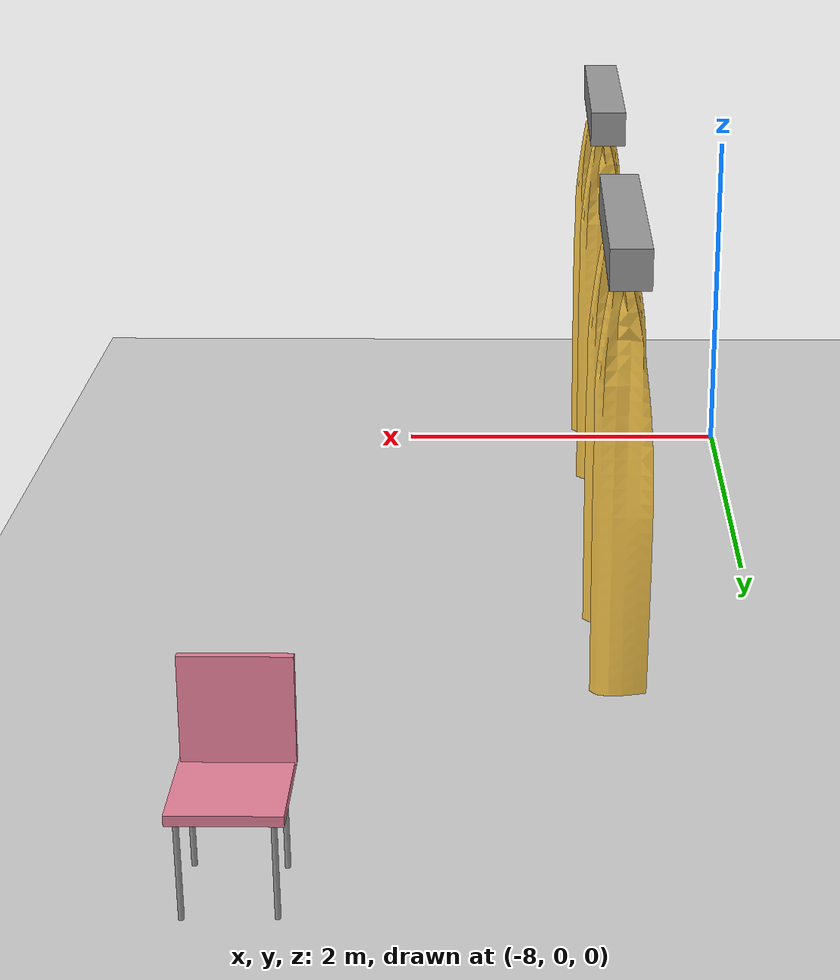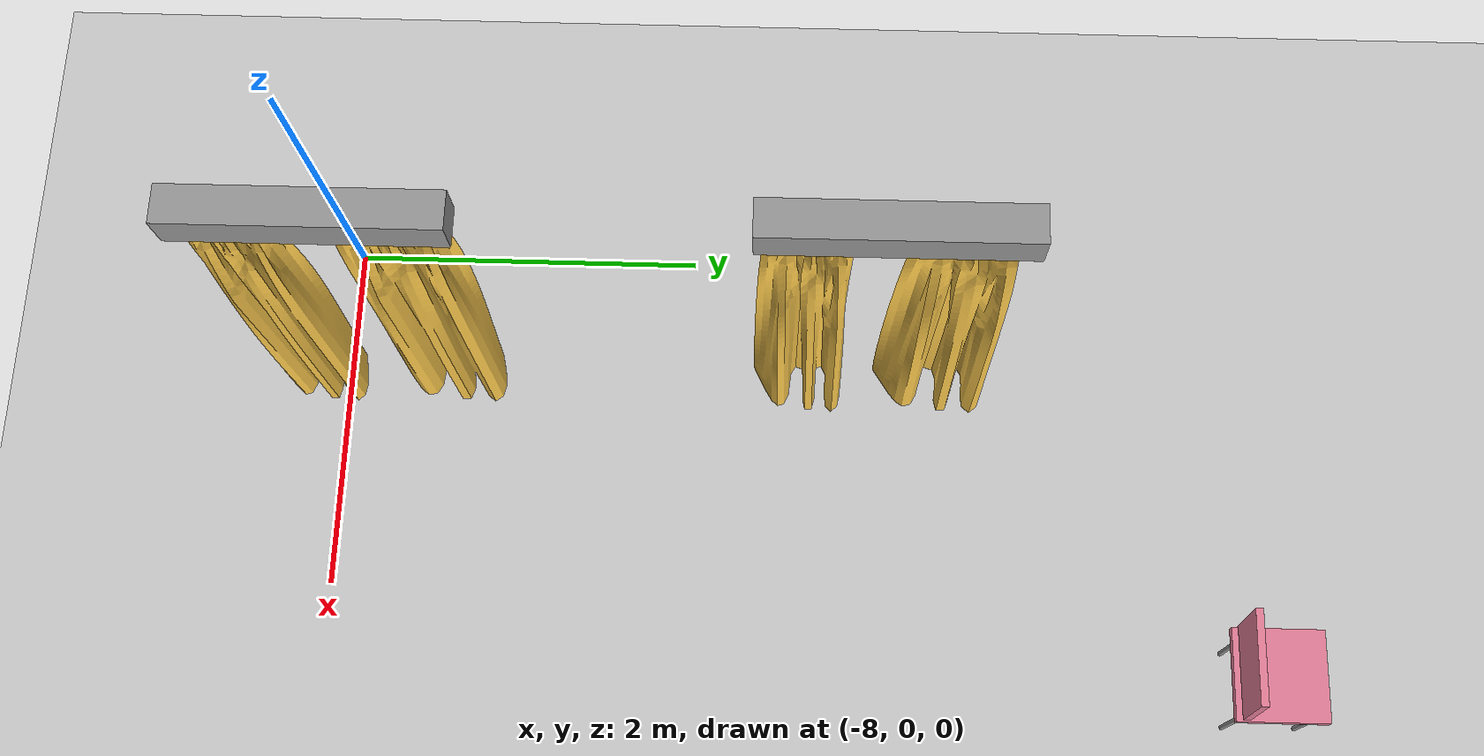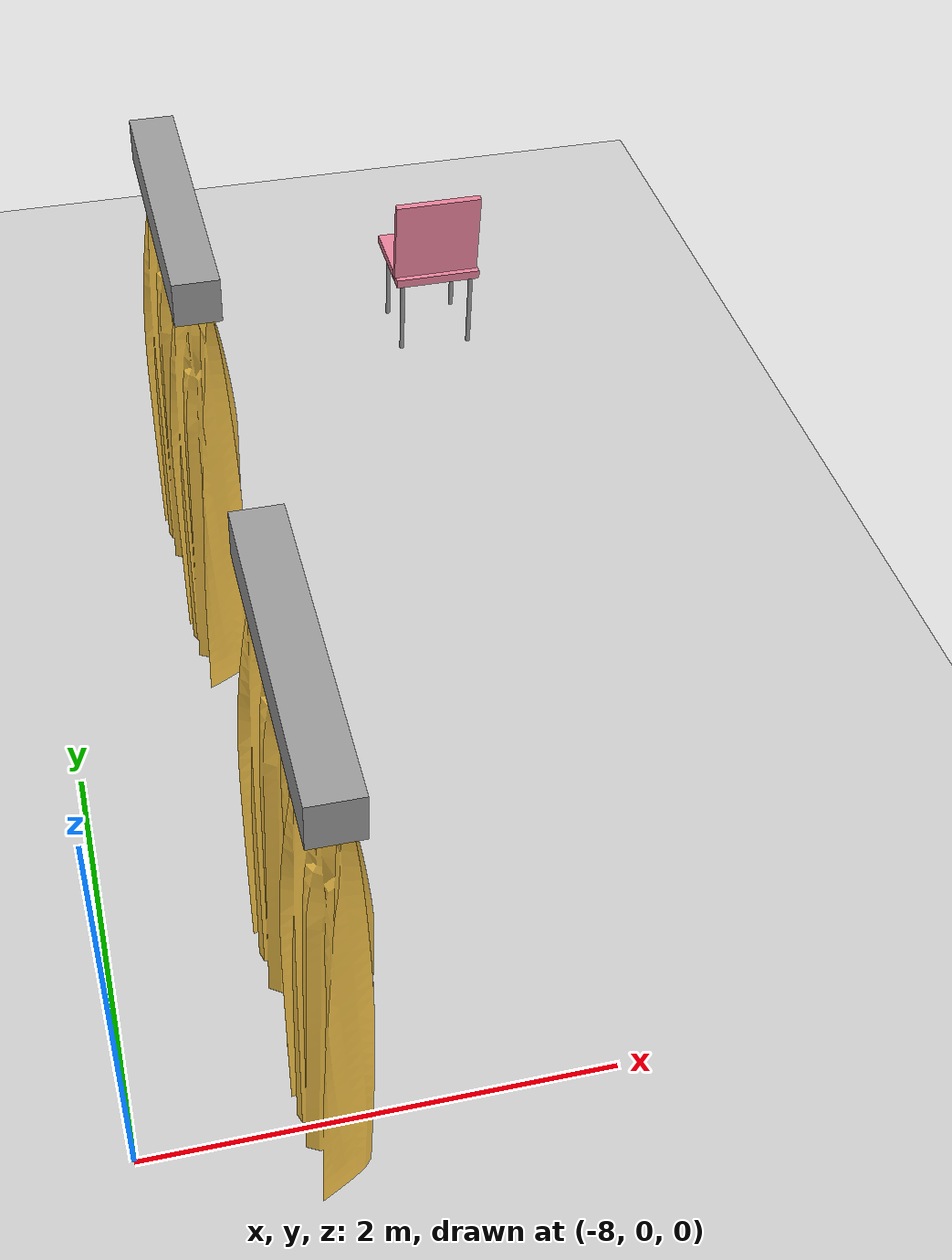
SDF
<sdf version="1.7">
 <world name="default">
  <model name="ground_plane">
   <static>1</static>
   <link name="link">
    <collision name="collision">
     <geometry><plane><normal>0 0 1</normal><size>100 100</size></plane></geometry>
     <surface>
      <contact><collide_bitmask>65535</collide_bitmask></contact>
      <friction><ode><mu>100</mu><mu2>50</mu2></ode></friction>
     </surface>
    </collision>
    <visual name="visual">
     <cast_shadows>0</cast_shadows>
     <geometry><plane><normal>0 0 1</normal><size>100 100</size></plane></geometry>
     <material>
      <script><uri>file://media/materials/scripts/gazebo.material</uri><name>Gazebo/Grey</name></script>
     </material>
    </visual>
   </link>
  </model>
  <model name="my_curtains">
   <link name="link_0">
    <inertial>
     <mass>1</mass>
     <inertia>
      <ixx>0.166667</ixx>
      <ixy>0</ixy>
      <ixz>0</ixz>
      <iyy>0.166667</iyy>
      <iyz>0</iyz>
      <izz>0.166667</izz>
     </inertia>
    </inertial>
    <pose>-0.211757 0.222097 -0.060343 0 -0 1.5714</pose>
    <visual name="visual">
     <pose>0 0 1.28 0 -0 0</pose>
     <geometry>
      <mesh>
       <uri>/home/massari/workspace/catkin_ws/src/my_robot/models/my_curtains/../../meshes/my_curtain.dae</uri>
       <scale>0.6 1 1.15</scale>
      </mesh>
     </geometry>
     <material>
      <lighting>1</lighting>
      <script><uri>file://media/materials/scripts/gazebo.material</uri><name>Gazebo/Grey</name></script>
      <shader type="pixel"><normal_map>__default__</normal_map></shader>
      <ambient>1 0.8 0.3 1</ambient>
      <diffuse>1 0.8 0.3 1</diffuse>
      <specular>0.01 0.01 0.01 1</specular>
      <emissive>0 0 0 1</emissive>
     </material>
    </visual>
    <collision name="collision">
     <pose>0 0 1.28 0 -0 0</pose>
     <geometry>
      <mesh>
       <uri>/home/massari/workspace/catkin_ws/src/my_robot/models/my_curtains/../../meshes/my_curtain.dae</uri>
       <scale>0.6 1 1.15</scale>
      </mesh>
     </geometry>
     <surface>
      <friction>
       <ode><mu>1</mu><mu2>1</mu2><fdir1>0 0 0</fdir1><slip1>0</slip1><slip2>0</slip2></ode>
       <torsional>
        <coefficient>1</coefficient>
        <patch_radius>0</patch_radius>
        <surface_radius>0</surface_radius>
        <use_patch_radius>1</use_patch_radius>
        <ode><slip>0</slip></ode>
       </torsional>
      </friction>
      <bounce><restitution_coefficient>0</restitution_coefficient><threshold>1e+06</threshold></bounce>
      <contact>
       <collide_without_contact>0</collide_without_contact>
       <collide_without_contact_bitmask>1</collide_without_contact_bitmask>
       <collide_bitmask>1</collide_bitmask>
       <ode>
        <soft_cfm>0</soft_cfm>
        <soft_erp>0.2</soft_erp>
        <kp>1e+13</kp>
        <kd>1</kd>
        <max_vel>0.01</max_vel>
        <min_depth>0</min_depth>
       </ode>
       <bullet>
        <split_impulse>1</split_impulse>
        <split_impulse_penetration_threshold>-0.01</split_impulse_penetration_threshold>
        <soft_cfm>0</soft_cfm>
        <soft_erp>0.2</soft_erp>
        <kp>1e+13</kp>
        <kd>1</kd>
       </bullet>
      </contact>
     </surface>
    </collision>
   </link>
   <link name="link_1">
    <inertial>
     <mass>1</mass>
     <inertia>
      <ixx>0.166667</ixx>
      <ixy>0</ixy>
      <ixz>0</ixz>
      <iyy>0.166667</iyy>
      <iyz>0</iyz>
      <izz>0.166667</izz>
     </inertia>
    </inertial>
    <pose>-0.223901 1.09183 -0.054274 0 -0 0</pose>
    <visual name="visual">
     <pose>0 0 1.28 0 -0 1.5707</pose>
     <geometry>
      <mesh>
       <uri>/home/massari/workspace/catkin_ws/src/my_robot/models/my_curtains/../../meshes/my_curtain.dae</uri>
       <scale>0.75 1 1.15</scale>
      </mesh>
     </geometry>
     <material>
      <lighting>1</lighting>
      <script><uri>file://media/materials/scripts/gazebo.material</uri><name>Gazebo/Grey</name></script>
      <shader type="pixel"><normal_map>__default__</normal_map></shader>
      <ambient>1 0.8 0.3 1</ambient>
      <diffuse>1 0.8 0.3 1</diffuse>
      <specular>0.01 0.01 0.01 1</specular>
      <emissive>0 0 0 1</emissive>
     </material>
    </visual>
    <collision name="collision">
     <pose>0 0 1.28 0 -0 1.5707</pose>
     <geometry>
      <mesh>
       <uri>/home/massari/workspace/catkin_ws/src/my_robot/models/my_curtains/../../meshes/my_curtain.dae</uri>
       <scale>0.75 1 1.15</scale>
      </mesh>
     </geometry>
     <surface>
      <friction>
       <ode><mu>1</mu><mu2>1</mu2><fdir1>0 0 0</fdir1><slip1>0</slip1><slip2>0</slip2></ode>
       <torsional>
        <coefficient>1</coefficient>
        <patch_radius>0</patch_radius>
        <surface_radius>0</surface_radius>
        <use_patch_radius>1</use_patch_radius>
        <ode><slip>0</slip></ode>
       </torsional>
      </friction>
      <bounce><restitution_coefficient>0</restitution_coefficient><threshold>1e+06</threshold></bounce>
      <contact>
       <collide_without_contact>0</collide_without_contact>
       <collide_without_contact_bitmask>1</collide_without_contact_bitmask>
       <collide_bitmask>1</collide_bitmask>
       <ode>
        <soft_cfm>0</soft_cfm>
        <soft_erp>0.2</soft_erp>
        <kp>1e+13</kp>
        <kd>1</kd>
        <max_vel>0.01</max_vel>
        <min_depth>0</min_depth>
       </ode>
       <bullet>
        <split_impulse>1</split_impulse>
        <split_impulse_penetration_threshold>-0.01</split_impulse_penetration_threshold>
        <soft_cfm>0</soft_cfm>
        <soft_erp>0.2</soft_erp>
        <kp>1e+13</kp>
        <kd>1</kd>
       </bullet>
      </contact>
     </surface>
    </collision>
   </link>
   <link name="link_2">
    <inertial>
     <mass>1</mass>
     <inertia>
      <ixx>0.166667</ixx>
      <ixy>0</ixy>
      <ixz>0</ixz>
      <iyy>0.166667</iyy>
      <iyz>0</iyz>
      <izz>0.166667</izz>
     </inertia>
    </inertial>
    <pose>-0.239313 0.203562 1.05159 0 -0 0</pose>
    <visual name="visual">
     <pose>0 0 1.28 0 -0 0</pose>
     <geometry><box><size>0.2 1.35 0.2</size></box></geometry>
     <material>
      <lighting>1</lighting>
      <script><uri>file://media/materials/scripts/gazebo.material</uri><name>Gazebo/Grey</name></script>
      <shader type="pixel"><normal_map>__default__</normal_map></shader>
      <ambient>0.9 0.9 0.9 1</ambient>
      <diffuse>0.9 0.9 0.9 1</diffuse>
      <specular>0.01 0.01 0.01 1</specular>
      <emissive>0 0 0 1</emissive>
     </material>
    </visual>
    <collision name="collision">
     <pose>0 0 1.28 0 -0 0</pose>
     <geometry><box><size>0.2 1.35 0.2</size></box></geometry>
     <surface>
      <friction>
       <ode><mu>1</mu><mu2>1</mu2><fdir1>0 0 0</fdir1><slip1>0</slip1><slip2>0</slip2></ode>
       <torsional>
        <coefficient>1</coefficient>
        <patch_radius>0</patch_radius>
        <surface_radius>0</surface_radius>
        <use_patch_radius>1</use_patch_radius>
        <ode><slip>0</slip></ode>
       </torsional>
      </friction>
      <bounce><restitution_coefficient>0</restitution_coefficient><threshold>1e+06</threshold></bounce>
      <contact>
       <collide_without_contact>0</collide_without_contact>
       <collide_without_contact_bitmask>1</collide_without_contact_bitmask>
       <collide_bitmask>1</collide_bitmask>
       <ode>
        <soft_cfm>0</soft_cfm>
        <soft_erp>0.2</soft_erp>
        <kp>1e+13</kp>
        <kd>1</kd>
        <max_vel>0.01</max_vel>
        <min_depth>0</min_depth>
       </ode>
       <bullet>
        <split_impulse>1</split_impulse>
        <split_impulse_penetration_threshold>-0.01</split_impulse_penetration_threshold>
        <soft_cfm>0</soft_cfm>
        <soft_erp>0.2</soft_erp>
        <kp>1e+13</kp>
        <kd>1</kd>
       </bullet>
      </contact>
     </surface>
    </collision>
   </link>
   <static>1</static>
   <pose>-6.99404 0.125287 0 0 -0 0</pose>
  </model>
  <model name="my_curtains_0">
   <link name="link_0">
    <inertial>
     <mass>1</mass>
     <inertia>
      <ixx>0.166667</ixx>
      <ixy>0</ixy>
      <ixz>0</ixz>
      <iyy>0.166667</iyy>
      <iyz>0</iyz>
      <izz>0.166667</izz>
     </inertia>
    </inertial>
    <pose>-0.211757 0.222097 -0.060343 0 -0 1.5714</pose>
    <visual name="visual">
     <pose>0 0 1.28 0 -0 0</pose>
     <geometry>
      <mesh>
       <uri>/home/massari/workspace/catkin_ws/src/my_robot/models/my_curtains/../../meshes/my_curtain.dae</uri>
       <scale>0.6 1 1.15</scale>
      </mesh>
     </geometry>
     <material>
      <lighting>1</lighting>
      <script><uri>file://media/materials/scripts/gazebo.material</uri><name>Gazebo/Grey</name></script>
      <shader type="pixel"><normal_map>__default__</normal_map></shader>
      <ambient>1 0.8 0.3 1</ambient>
      <diffuse>1 0.8 0.3 1</diffuse>
      <specular>0.01 0.01 0.01 1</specular>
      <emissive>0 0 0 1</emissive>
     </material>
    </visual>
    <collision name="collision">
     <pose>0 0 1.28 0 -0 0</pose>
     <geometry>
      <mesh>
       <uri>/home/massari/workspace/catkin_ws/src/my_robot/models/my_curtains/../../meshes/my_curtain.dae</uri>
       <scale>0.6 1 1.15</scale>
      </mesh>
     </geometry>
     <surface>
      <friction>
       <ode><mu>1</mu><mu2>1</mu2><fdir1>0 0 0</fdir1><slip1>0</slip1><slip2>0</slip2></ode>
       <torsional>
        <coefficient>1</coefficient>
        <patch_radius>0</patch_radius>
        <surface_radius>0</surface_radius>
        <use_patch_radius>1</use_patch_radius>
        <ode><slip>0</slip></ode>
       </torsional>
      </friction>
      <bounce><restitution_coefficient>0</restitution_coefficient><threshold>1e+06</threshold></bounce>
      <contact>
       <collide_without_contact>0</collide_without_contact>
       <collide_without_contact_bitmask>1</collide_without_contact_bitmask>
       <collide_bitmask>1</collide_bitmask>
       <ode>
        <soft_cfm>0</soft_cfm>
        <soft_erp>0.2</soft_erp>
        <kp>1e+13</kp>
        <kd>1</kd>
        <max_vel>0.01</max_vel>
        <min_depth>0</min_depth>
       </ode>
       <bullet>
        <split_impulse>1</split_impulse>
        <split_impulse_penetration_threshold>-0.01</split_impulse_penetration_threshold>
        <soft_cfm>0</soft_cfm>
        <soft_erp>0.2</soft_erp>
        <kp>1e+13</kp>
        <kd>1</kd>
       </bullet>
      </contact>
     </surface>
    </collision>
   </link>
   <link name="link_1">
    <inertial>
     <mass>1</mass>
     <inertia>
      <ixx>0.166667</ixx>
      <ixy>0</ixy>
      <ixz>0</ixz>
      <iyy>0.166667</iyy>
      <iyz>0</iyz>
      <izz>0.166667</izz>
     </inertia>
    </inertial>
    <pose>-0.223901 1.09183 -0.054274 0 -0 0</pose>
    <visual name="visual">
     <pose>0 0 1.28 0 -0 1.5707</pose>
     <geometry>
      <mesh>
       <uri>/home/massari/workspace/catkin_ws/src/my_robot/models/my_curtains/../../meshes/my_curtain.dae</uri>
       <scale>0.75 1 1.15</scale>
      </mesh>
     </geometry>
     <material>
      <lighting>1</lighting>
      <script><uri>file://media/materials/scripts/gazebo.material</uri><name>Gazebo/Grey</name></script>
      <shader type="pixel"><normal_map>__default__</normal_map></shader>
      <ambient>1 0.8 0.3 1</ambient>
      <diffuse>1 0.8 0.3 1</diffuse>
      <specular>0.01 0.01 0.01 1</specular>
      <emissive>0 0 0 1</emissive>
     </material>
    </visual>
    <collision name="collision">
     <pose>0 0 1.28 0 -0 1.5707</pose>
     <geometry>
      <mesh>
       <uri>/home/massari/workspace/catkin_ws/src/my_robot/models/my_curtains/../../meshes/my_curtain.dae</uri>
       <scale>0.75 1 1.15</scale>
      </mesh>
     </geometry>
     <surface>
      <friction>
       <ode><mu>1</mu><mu2>1</mu2><fdir1>0 0 0</fdir1><slip1>0</slip1><slip2>0</slip2></ode>
       <torsional>
        <coefficient>1</coefficient>
        <patch_radius>0</patch_radius>
        <surface_radius>0</surface_radius>
        <use_patch_radius>1</use_patch_radius>
        <ode><slip>0</slip></ode>
       </torsional>
      </friction>
      <bounce><restitution_coefficient>0</restitution_coefficient><threshold>1e+06</threshold></bounce>
      <contact>
       <collide_without_contact>0</collide_without_contact>
       <collide_without_contact_bitmask>1</collide_without_contact_bitmask>
       <collide_bitmask>1</collide_bitmask>
       <ode>
        <soft_cfm>0</soft_cfm>
        <soft_erp>0.2</soft_erp>
        <kp>1e+13</kp>
        <kd>1</kd>
        <max_vel>0.01</max_vel>
        <min_depth>0</min_depth>
       </ode>
       <bullet>
        <split_impulse>1</split_impulse>
        <split_impulse_penetration_threshold>-0.01</split_impulse_penetration_threshold>
        <soft_cfm>0</soft_cfm>
        <soft_erp>0.2</soft_erp>
        <kp>1e+13</kp>
        <kd>1</kd>
       </bullet>
      </contact>
     </surface>
    </collision>
   </link>
   <link name="link_2">
    <inertial>
     <mass>1</mass>
     <inertia>
      <ixx>0.166667</ixx>
      <ixy>0</ixy>
      <ixz>0</ixz>
      <iyy>0.166667</iyy>
      <iyz>0</iyz>
      <izz>0.166667</izz>
     </inertia>
    </inertial>
    <pose>-0.239313 0.203562 1.05159 0 -0 0</pose>
    <visual name="visual">
     <pose>0 0 1.28 0 -0 0</pose>
     <geometry><box><size>0.2 1.35 0.2</size></box></geometry>
     <material>
      <lighting>1</lighting>
      <script><uri>file://media/materials/scripts/gazebo.material</uri><name>Gazebo/Grey</name></script>
      <shader type="pixel"><normal_map>__default__</normal_map></shader>
      <ambient>0.9 0.9 0.9 1</ambient>
      <diffuse>0.9 0.9 0.9 1</diffuse>
      <specular>0.01 0.01 0.01 1</specular>
      <emissive>0 0 0 1</emissive>
     </material>
    </visual>
    <collision name="collision">
     <pose>0 0 1.28 0 -0 0</pose>
     <geometry><box><size>0.2 1.35 0.2</size></box></geometry>
     <surface>
      <friction>
       <ode><mu>1</mu><mu2>1</mu2><fdir1>0 0 0</fdir1><slip1>0</slip1><slip2>0</slip2></ode>
       <torsional>
        <coefficient>1</coefficient>
        <patch_radius>0</patch_radius>
        <surface_radius>0</surface_radius>
        <use_patch_radius>1</use_patch_radius>
        <ode><slip>0</slip></ode>
       </torsional>
      </friction>
      <bounce><restitution_coefficient>0</restitution_coefficient><threshold>1e+06</threshold></bounce>
      <contact>
       <collide_without_contact>0</collide_without_contact>
       <collide_without_contact_bitmask>1</collide_without_contact_bitmask>
       <collide_bitmask>1</collide_bitmask>
       <ode>
        <soft_cfm>0</soft_cfm>
        <soft_erp>0.2</soft_erp>
        <kp>1e+13</kp>
        <kd>1</kd>
        <max_vel>0.01</max_vel>
        <min_depth>0</min_depth>
       </ode>
       <bullet>
        <split_impulse>1</split_impulse>
        <split_impulse_penetration_threshold>-0.01</split_impulse_penetration_threshold>
        <soft_cfm>0</soft_cfm>
        <soft_erp>0.2</soft_erp>
        <kp>1e+13</kp>
        <kd>1</kd>
       </bullet>
      </contact>
     </surface>
    </collision>
   </link>
   <static>1</static>
   <pose>-6.99313 2.88038 0 0 -0 0</pose>
  </model>
  <model name="my_chair">
   <link name="link">
    <inertial>
     <mass>1</mass>
     <inertia>
      <ixx>0.166667</ixx>
      <ixy>0</ixy>
      <ixz>0</ixz>
      <iyy>0.166667</iyy>
      <iyz>0</iyz>
      <izz>0.166667</izz>
     </inertia>
    </inertial>
    <gravity>0</gravity>
    <visual name="visual">
     <geometry><box><size>0.5 0.5 0.05</size></box></geometry>
     <material>
      <script><name>Gazebo/Grey</name><uri>file://media/materials/scripts/gazebo.material</uri></script>
      <shader type="pixel"><normal_map>__default__</normal_map></shader>
      <ambient>0.9 0.5 0.6 1</ambient>
      <diffuse>0.9 0.5 0.6 1</diffuse>
      <specular>0.01 0.01 0.01 1</specular>
      <emissive>0 0 0 1</emissive>
     </material>
     <pose>0 0 0.5 0 -0 0</pose>
    </visual>
    <collision name="collision">
     <pose>0 0 0.5 0 -0 0</pose>
     <geometry><box><size>0.5 0.5 0.05</size></box></geometry>
     <surface>
      <friction>
       <ode><mu>1</mu><mu2>1</mu2><fdir1>0 0 0</fdir1><slip1>0</slip1><slip2>0</slip2></ode>
       <torsional>
        <coefficient>1</coefficient>
        <patch_radius>0</patch_radius>
        <surface_radius>0</surface_radius>
        <use_patch_radius>1</use_patch_radius>
        <ode><slip>0</slip></ode>
       </torsional>
      </friction>
      <bounce><restitution_coefficient>0</restitution_coefficient><threshold>1e+06</threshold></bounce>
      <contact>
       <collide_without_contact>0</collide_without_contact>
       <collide_without_contact_bitmask>1</collide_without_contact_bitmask>
       <collide_bitmask>1</collide_bitmask>
       <ode>
        <soft_cfm>0</soft_cfm>
        <soft_erp>0.2</soft_erp>
        <kp>1e+13</kp>
        <kd>1</kd>
        <max_vel>0.01</max_vel>
        <min_depth>0</min_depth>
       </ode>
       <bullet>
        <split_impulse>1</split_impulse>
        <split_impulse_penetration_threshold>-0.01</split_impulse_penetration_threshold>
        <soft_cfm>0</soft_cfm>
        <soft_erp>0.2</soft_erp>
        <kp>1e+13</kp>
        <kd>1</kd>
       </bullet>
      </contact>
     </surface>
    </collision>
   </link>
   <link name="link_0">
    <inertial>
     <mass>1</mass>
     <inertia><ixx>0.145833</ixx><ixy>0</ixy><ixz>0</ixz><iyy>0.145833</iyy><iyz>0</iyz><izz>0.125</izz></inertia>
    </inertial>
    <pose>-0.200315 -0.184767 -0.272701 -0 -0 -0</pose>
    <gravity>0</gravity>
    <visual name="visual">
     <pose>0 0 0.5 0 -0 0</pose>
     <geometry><cylinder><radius>0.013</radius><length>0.5</length></cylinder></geometry>
     <material>
      <lighting>1</lighting>
      <script><uri>file://media/materials/scripts/gazebo.material</uri><name>Gazebo/Grey</name></script>
      <shader type="pixel"><normal_map>__default__</normal_map></shader>
      <ambient>0.3 0.3 0.3 1</ambient>
      <diffuse>0.7 0.7 0.7 1</diffuse>
      <specular>0.01 0.01 0.01 1</specular>
      <emissive>0 0 0 1</emissive>
     </material>
    </visual>
    <collision name="collision">
     <pose>0 0 0.5 0 -0 0</pose>
     <geometry><cylinder><radius>0.013</radius><length>0.5</length></cylinder></geometry>
     <surface>
      <friction>
       <ode><mu>1</mu><mu2>1</mu2><fdir1>0 0 0</fdir1><slip1>0</slip1><slip2>0</slip2></ode>
       <torsional>
        <coefficient>1</coefficient>
        <patch_radius>0</patch_radius>
        <surface_radius>0</surface_radius>
        <use_patch_radius>1</use_patch_radius>
        <ode><slip>0</slip></ode>
       </torsional>
      </friction>
      <bounce><restitution_coefficient>0</restitution_coefficient><threshold>1e+06</threshold></bounce>
      <contact>
       <collide_without_contact>0</collide_without_contact>
       <collide_without_contact_bitmask>1</collide_without_contact_bitmask>
       <collide_bitmask>1</collide_bitmask>
       <ode>
        <soft_cfm>0</soft_cfm>
        <soft_erp>0.2</soft_erp>
        <kp>1e+13</kp>
        <kd>1</kd>
        <max_vel>0.01</max_vel>
        <min_depth>0</min_depth>
       </ode>
       <bullet>
        <split_impulse>1</split_impulse>
        <split_impulse_penetration_threshold>-0.01</split_impulse_penetration_threshold>
        <soft_cfm>0</soft_cfm>
        <soft_erp>0.2</soft_erp>
        <kp>1e+13</kp>
        <kd>1</kd>
       </bullet>
      </contact>
     </surface>
    </collision>
   </link>
   <link name="link_0_clone">
    <inertial>
     <mass>1</mass>
     <inertia><ixx>0.145833</ixx><ixy>0</ixy><ixz>0</ixz><iyy>0.145833</iyy><iyz>0</iyz><izz>0.125</izz></inertia>
    </inertial>
    <pose>-0.198839 0.194466 -0.272701 -0 -0 -0</pose>
    <gravity>0</gravity>
    <visual name="visual">
     <pose>0 0 0.5 0 -0 0</pose>
     <geometry><cylinder><radius>0.013</radius><length>0.5</length></cylinder></geometry>
     <material>
      <lighting>1</lighting>
      <script><uri>file://media/materials/scripts/gazebo.material</uri><name>Gazebo/Grey</name></script>
      <shader type="pixel"><normal_map>__default__</normal_map></shader>
      <ambient>0.3 0.3 0.3 1</ambient>
      <diffuse>0.7 0.7 0.7 1</diffuse>
      <specular>0.01 0.01 0.01 1</specular>
      <emissive>0 0 0 1</emissive>
     </material>
    </visual>
    <collision name="collision">
     <pose>0 0 0.5 0 -0 0</pose>
     <geometry><cylinder><radius>0.013</radius><length>0.5</length></cylinder></geometry>
     <surface>
      <friction>
       <ode><mu>1</mu><mu2>1</mu2><fdir1>0 0 0</fdir1><slip1>0</slip1><slip2>0</slip2></ode>
       <torsional>
        <coefficient>1</coefficient>
        <patch_radius>0</patch_radius>
        <surface_radius>0</surface_radius>
        <use_patch_radius>1</use_patch_radius>
        <ode><slip>0</slip></ode>
       </torsional>
      </friction>
      <bounce><restitution_coefficient>0</restitution_coefficient><threshold>1e+06</threshold></bounce>
      <contact>
       <collide_without_contact>0</collide_without_contact>
       <collide_without_contact_bitmask>1</collide_without_contact_bitmask>
       <collide_bitmask>1</collide_bitmask>
       <ode>
        <soft_cfm>0</soft_cfm>
        <soft_erp>0.2</soft_erp>
        <kp>1e+13</kp>
        <kd>1</kd>
        <max_vel>0.01</max_vel>
        <min_depth>0</min_depth>
       </ode>
       <bullet>
        <split_impulse>1</split_impulse>
        <split_impulse_penetration_threshold>-0.01</split_impulse_penetration_threshold>
        <soft_cfm>0</soft_cfm>
        <soft_erp>0.2</soft_erp>
        <kp>1e+13</kp>
        <kd>1</kd>
       </bullet>
      </contact>
     </surface>
    </collision>
   </link>
   <link name="link_0_clone_0">
    <inertial>
     <mass>1</mass>
     <inertia><ixx>0.145833</ixx><ixy>0</ixy><ixz>0</ixz><iyy>0.145833</iyy><iyz>0</iyz><izz>0.125</izz></inertia>
    </inertial>
    <pose>0.211914 -0.198881 -0.272701 -0 -0 -0</pose>
    <gravity>0</gravity>
    <visual name="visual">
     <pose>0 0 0.5 0 -0 0</pose>
     <geometry><cylinder><radius>0.013</radius><length>0.5</length></cylinder></geometry>
     <material>
      <lighting>1</lighting>
      <script><uri>file://media/materials/scripts/gazebo.material</uri><name>Gazebo/Grey</name></script>
      <shader type="pixel"><normal_map>__default__</normal_map></shader>
      <ambient>0.3 0.3 0.3 1</ambient>
      <diffuse>0.7 0.7 0.7 1</diffuse>
      <specular>0.01 0.01 0.01 1</specular>
      <emissive>0 0 0 1</emissive>
     </material>
    </visual>
    <collision name="collision">
     <pose>0 0 0.5 0 -0 0</pose>
     <geometry><cylinder><radius>0.013</radius><length>0.5</length></cylinder></geometry>
     <surface>
      <friction>
       <ode><mu>1</mu><mu2>1</mu2><fdir1>0 0 0</fdir1><slip1>0</slip1><slip2>0</slip2></ode>
       <torsional>
        <coefficient>1</coefficient>
        <patch_radius>0</patch_radius>
        <surface_radius>0</surface_radius>
        <use_patch_radius>1</use_patch_radius>
        <ode><slip>0</slip></ode>
       </torsional>
      </friction>
      <bounce><restitution_coefficient>0</restitution_coefficient><threshold>1e+06</threshold></bounce>
      <contact>
       <collide_without_contact>0</collide_without_contact>
       <collide_without_contact_bitmask>1</collide_without_contact_bitmask>
       <collide_bitmask>1</collide_bitmask>
       <ode>
        <soft_cfm>0</soft_cfm>
        <soft_erp>0.2</soft_erp>
        <kp>1e+13</kp>
        <kd>1</kd>
        <max_vel>0.01</max_vel>
        <min_depth>0</min_depth>
       </ode>
       <bullet>
        <split_impulse>1</split_impulse>
        <split_impulse_penetration_threshold>-0.01</split_impulse_penetration_threshold>
        <soft_cfm>0</soft_cfm>
        <soft_erp>0.2</soft_erp>
        <kp>1e+13</kp>
        <kd>1</kd>
       </bullet>
      </contact>
     </surface>
    </collision>
   </link>
   <link name="link_0_clone_1">
    <inertial>
     <mass>1</mass>
     <inertia><ixx>0.145833</ixx><ixy>0</ixy><ixz>0</ixz><iyy>0.145833</iyy><iyz>0</iyz><izz>0.125</izz></inertia>
    </inertial>
    <pose>0.207422 0.203987 -0.272701 -0 -0 -0</pose>
    <gravity>0</gravity>
    <visual name="visual">
     <pose>0 0 0.5 0 -0 0</pose>
     <geometry><cylinder><radius>0.013</radius><length>0.5</length></cylinder></geometry>
     <material>
      <lighting>1</lighting>
      <script><uri>file://media/materials/scripts/gazebo.material</uri><name>Gazebo/Grey</name></script>
      <shader type="pixel"><normal_map>__default__</normal_map></shader>
      <ambient>0.3 0.3 0.3 1</ambient>
      <diffuse>0.7 0.7 0.7 1</diffuse>
      <specular>0.01 0.01 0.01 1</specular>
      <emissive>0 0 0 1</emissive>
     </material>
    </visual>
    <collision name="collision">
     <pose>0 0 0.5 0 -0 0</pose>
     <geometry><cylinder><radius>0.013</radius><length>0.5</length></cylinder></geometry>
     <surface>
      <friction>
       <ode><mu>1</mu><mu2>1</mu2><fdir1>0 0 0</fdir1><slip1>0</slip1><slip2>0</slip2></ode>
       <torsional>
        <coefficient>1</coefficient>
        <patch_radius>0</patch_radius>
        <surface_radius>0</surface_radius>
        <use_patch_radius>1</use_patch_radius>
        <ode><slip>0</slip></ode>
       </torsional>
      </friction>
      <bounce><restitution_coefficient>0</restitution_coefficient><threshold>1e+06</threshold></bounce>
      <contact>
       <collide_without_contact>0</collide_without_contact>
       <collide_without_contact_bitmask>1</collide_without_contact_bitmask>
       <collide_bitmask>1</collide_bitmask>
       <ode>
        <soft_cfm>0</soft_cfm>
        <soft_erp>0.2</soft_erp>
        <kp>1e+13</kp>
        <kd>1</kd>
        <max_vel>0.01</max_vel>
        <min_depth>0</min_depth>
       </ode>
       <bullet>
        <split_impulse>1</split_impulse>
        <split_impulse_penetration_threshold>-0.01</split_impulse_penetration_threshold>
        <soft_cfm>0</soft_cfm>
        <soft_erp>0.2</soft_erp>
        <kp>1e+13</kp>
        <kd>1</kd>
       </bullet>
      </contact>
     </surface>
    </collision>
   </link>
   <link name="link_clone">
    <inertial>
     <mass>1</mass>
     <inertia>
      <ixx>0.166667</ixx>
      <ixy>0</ixy>
      <ixz>0</ixz>
      <iyy>0.166667</iyy>
      <iyz>0</iyz>
      <izz>0.166667</izz>
     </inertia>
    </inertial>
    <pose>-0.00806 -0.212496 0.264135 -0 -0 -0</pose>
    <gravity>0</gravity>
    <visual name="visual">
     <geometry><box><size>0.5 0.5 0.04</size></box></geometry>
     <material>
      <script><name>Gazebo/Grey</name><uri>file://media/materials/scripts/gazebo.material</uri></script>
      <shader type="pixel"><normal_map>__default__</normal_map></shader>
      <ambient>0.9 0.5 0.6 1</ambient>
      <diffuse>0.9 0.5 0.6 1</diffuse>
      <specular>0.01 0.01 0.01 1</specular>
      <emissive>0 0 0 1</emissive>
     </material>
     <pose>0 0 0.5 -1.5 0 0</pose>
    </visual>
    <collision name="collision">
     <pose>0 0 0.5 -1.5 0 0</pose>
     <geometry><box><size>0.5 0.5 0.04</size></box></geometry>
     <surface>
      <friction>
       <ode><mu>1</mu><mu2>1</mu2><fdir1>0 0 0</fdir1><slip1>0</slip1><slip2>0</slip2></ode>
       <torsional>
        <coefficient>1</coefficient>
        <patch_radius>0</patch_radius>
        <surface_radius>0</surface_radius>
        <use_patch_radius>1</use_patch_radius>
        <ode><slip>0</slip></ode>
       </torsional>
      </friction>
      <bounce><restitution_coefficient>0</restitution_coefficient><threshold>1e+06</threshold></bounce>
      <contact>
       <collide_without_contact>0</collide_without_contact>
       <collide_without_contact_bitmask>1</collide_without_contact_bitmask>
       <collide_bitmask>1</collide_bitmask>
       <ode>
        <soft_cfm>0</soft_cfm>
        <soft_erp>0.2</soft_erp>
        <kp>1e+13</kp>
        <kd>1</kd>
        <max_vel>0.01</max_vel>
        <min_depth>0</min_depth>
       </ode>
       <bullet>
        <split_impulse>1</split_impulse>
        <split_impulse_penetration_threshold>-0.01</split_impulse_penetration_threshold>
        <soft_cfm>0</soft_cfm>
        <soft_erp>0.2</soft_erp>
        <kp>1e+13</kp>
        <kd>1</kd>
       </bullet>
      </contact>
     </surface>
    </collision>
   </link>
   <static>1</static>
   <pose>-5.51809 5.23319 0 0 -0 0</pose>
  </model>
 </world>
</sdf>
